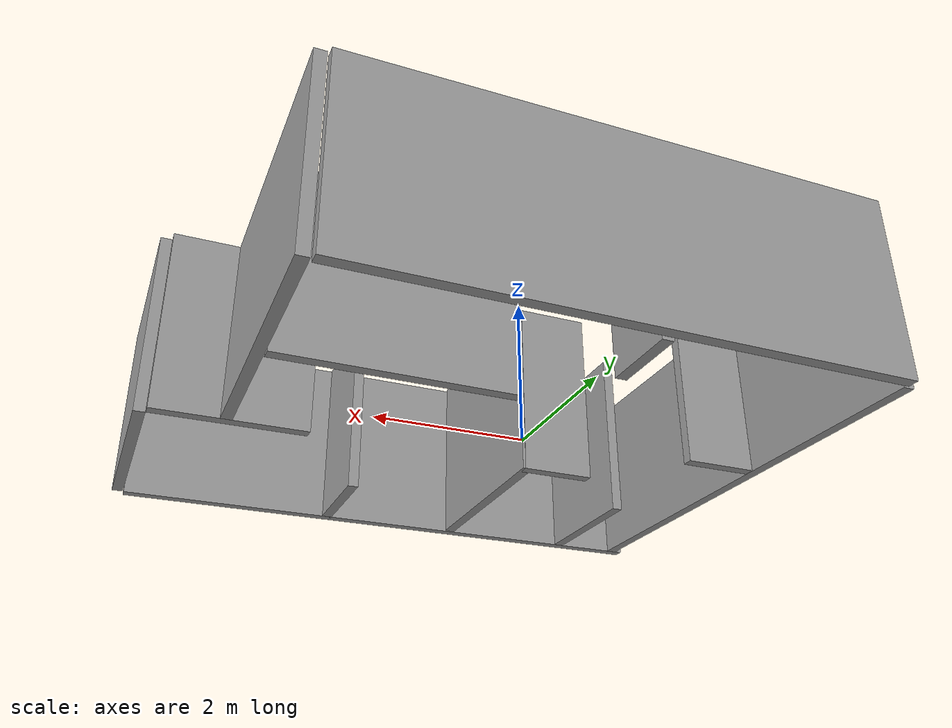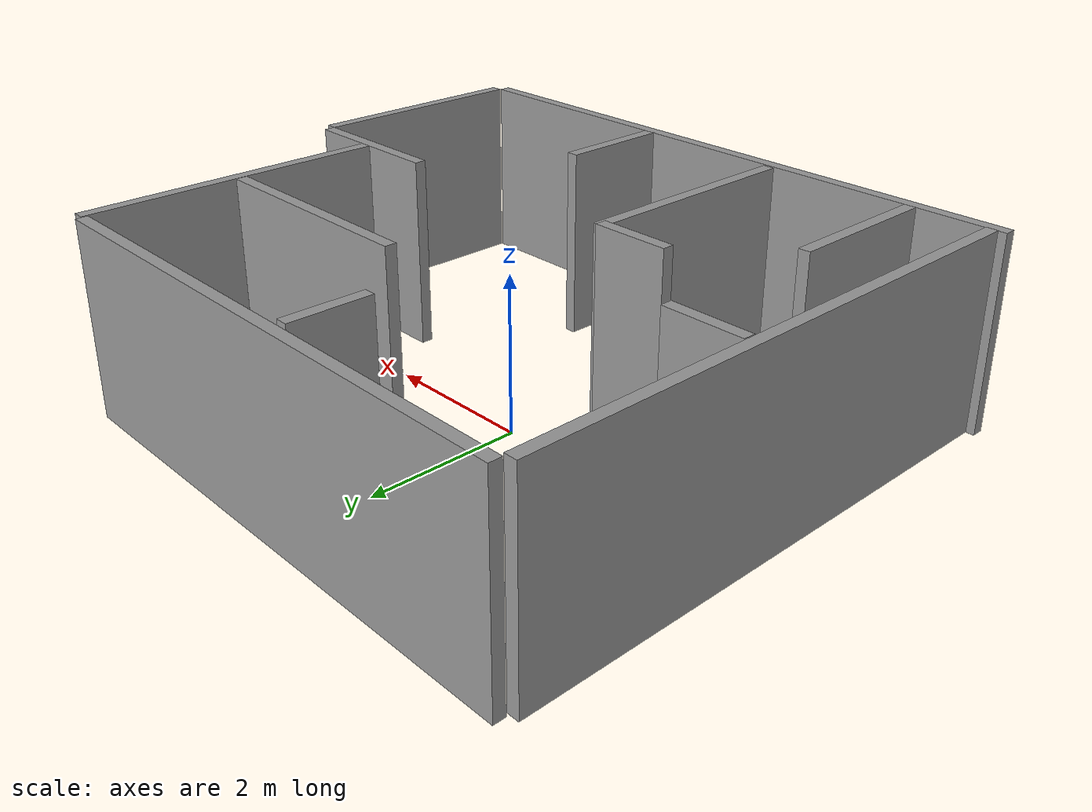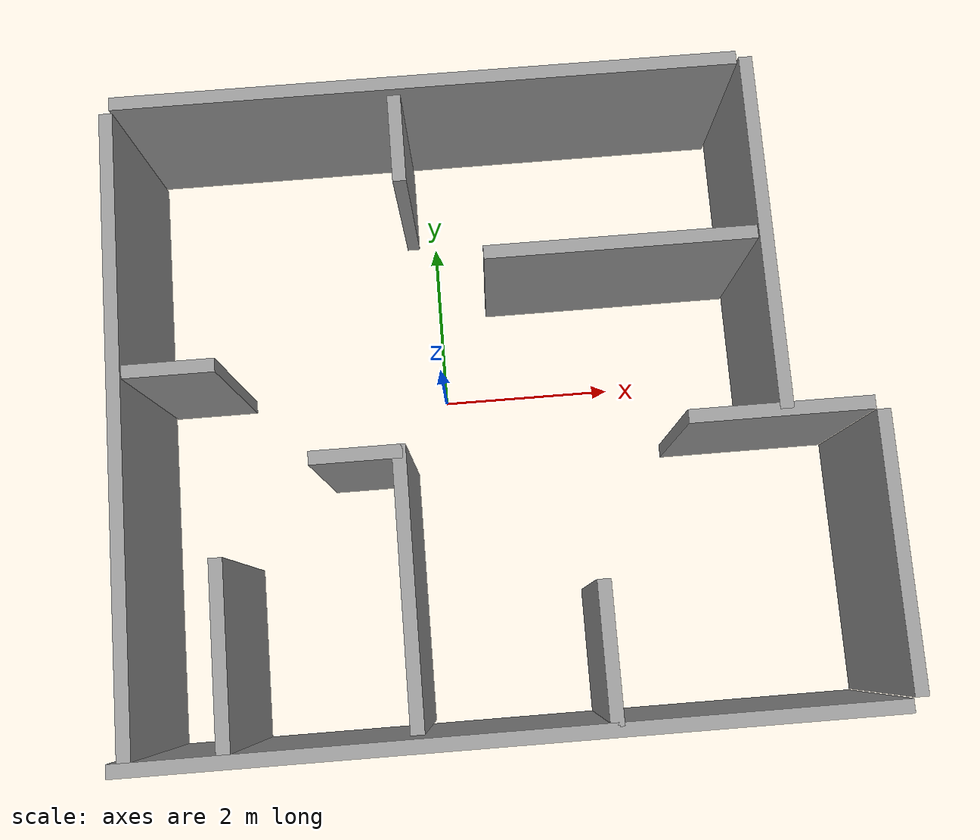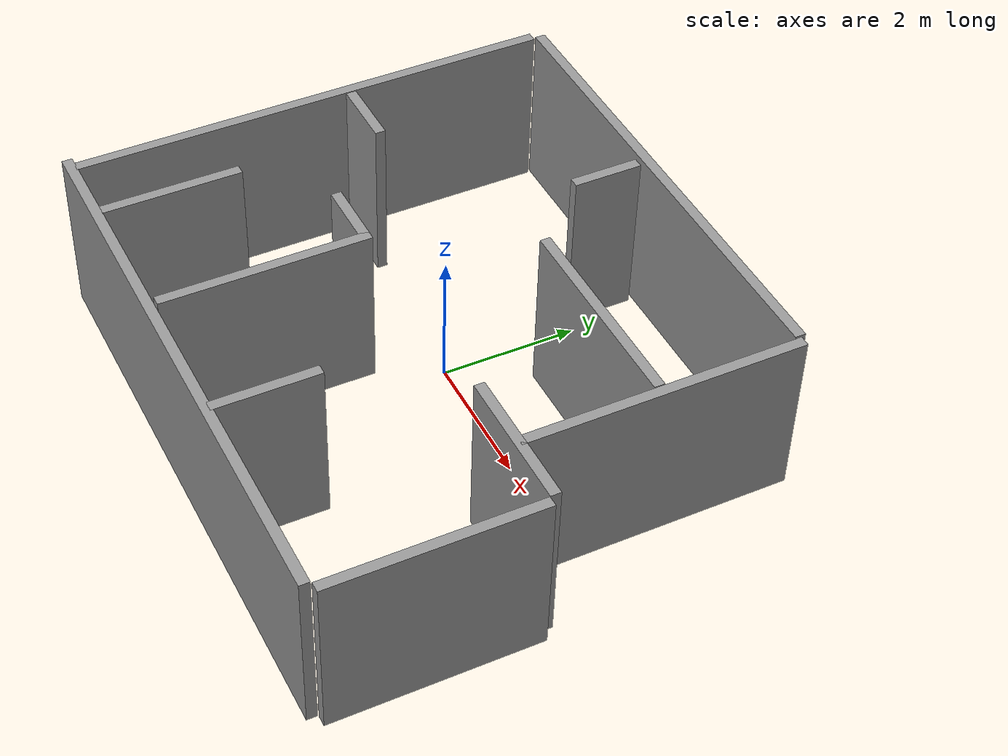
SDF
<?xml version='1.0'?>
<sdf version='1.6'>
  <model name='maze'>
    <link name='Wall_0'>
      <pose frame=''>0.057352 3.19539 0 0 -0 0</pose>
      <self_collide>0</self_collide>
      <enable_wind>0</enable_wind>
      <kinematic>0</kinematic>
      <visual name='Wall_0_Visual'>
        <pose frame=''>0 0 1.25 0 -0 0</pose>
        <geometry>
          <box>
            <size>7 0.15 2.5</size>
          </box>
        </geometry>
        <material>
          <script>
            <uri>file://media/materials/scripts/gazebo.material</uri>
            <name>Gazebo/Grey</name>
          </script>
          <ambient>1 1 1 1</ambient>
        </material>
        <meta>
          <layer>0</layer>
        </meta>
        <transparency>0</transparency>
        <cast_shadows>1</cast_shadows>
      </visual>
      <collision name='Wall_0_Collision'>
        <laser_retro>0</laser_retro>
        <max_contacts>10</max_contacts>
        <pose frame=''>0 0 1.25 0 -0 0</pose>
        <geometry>
          <box>
            <size>7 0.15 2.5</size>
          </box>
        </geometry>
        <surface>
          <friction>
            <ode>
              <mu>1</mu>
              <mu2>1</mu2>
              <fdir1>0 0 0</fdir1>
              <slip1>0</slip1>
              <slip2>0</slip2>
            </ode>
            <torsional>
              <coefficient>1</coefficient>
              <patch_radius>0</patch_radius>
              <surface_radius>0</surface_radius>
              <use_patch_radius>1</use_patch_radius>
              <ode>
                <slip>0</slip>
              </ode>
            </torsional>
          </friction>
          <bounce>
            <restitution_coefficient>0</restitution_coefficient>
            <threshold>1e+06</threshold>
          </bounce>
          <contact>
            <collide_without_contact>0</collide_without_contact>
            <collide_without_contact_bitmask>1</collide_without_contact_bitmask>
            <collide_bitmask>1</collide_bitmask>
            <ode>
              <soft_cfm>0</soft_cfm>
              <soft_erp>0.2</soft_erp>
              <kp>1e+13</kp>
              <kd>1</kd>
              <max_vel>0.01</max_vel>
              <min_depth>0</min_depth>
            </ode>
            <bullet>
              <split_impulse>1</split_impulse>
              <split_impulse_penetration_threshold>-0.01</split_impulse_penetration_threshold>
              <soft_cfm>0</soft_cfm>
              <soft_erp>0.2</soft_erp>
              <kp>1e+13</kp>
              <kd>1</kd>
            </bullet>
          </contact>
        </surface>
      </collision>
    </link>
    <link name='Wall_13'>
      <pose frame=''>2.07007 1.16535 0 0 -0 0</pose>
      <self_collide>0</self_collide>
      <enable_wind>0</enable_wind>
      <kinematic>0</kinematic>
      <visual name='Wall_13_Visual'>
        <pose frame=''>0 0 1.25 0 -0 0</pose>
        <geometry>
          <box>
            <size>3 0.15 2.5</size>
          </box>
        </geometry>
        <material>
          <script>
            <uri>file://media/materials/scripts/gazebo.material</uri>
            <name>Gazebo/Grey</name>
          </script>
          <ambient>1 1 1 1</ambient>
        </material>
        <meta>
          <layer>0</layer>
        </meta>
        <transparency>0</transparency>
        <cast_shadows>1</cast_shadows>
      </visual>
      <collision name='Wall_13_Collision'>
        <laser_retro>0</laser_retro>
        <max_contacts>10</max_contacts>
        <pose frame=''>0 0 1.25 0 -0 0</pose>
        <geometry>
          <box>
            <size>3 0.15 2.5</size>
          </box>
        </geometry>
        <surface>
          <friction>
            <ode>
              <mu>1</mu>
              <mu2>1</mu2>
              <fdir1>0 0 0</fdir1>
              <slip1>0</slip1>
              <slip2>0</slip2>
            </ode>
            <torsional>
              <coefficient>1</coefficient>
              <patch_radius>0</patch_radius>
              <surface_radius>0</surface_radius>
              <use_patch_radius>1</use_patch_radius>
              <ode>
                <slip>0</slip>
              </ode>
            </torsional>
          </friction>
          <bounce>
            <restitution_coefficient>0</restitution_coefficient>
            <threshold>1e+06</threshold>
          </bounce>
          <contact>
            <collide_without_contact>0</collide_without_contact>
            <collide_without_contact_bitmask>1</collide_without_contact_bitmask>
            <collide_bitmask>1</collide_bitmask>
            <ode>
              <soft_cfm>0</soft_cfm>
              <soft_erp>0.2</soft_erp>
              <kp>1e+13</kp>
              <kd>1</kd>
              <max_vel>0.01</max_vel>
              <min_depth>0</min_depth>
            </ode>
            <bullet>
              <split_impulse>1</split_impulse>
              <split_impulse_penetration_threshold>-0.01</split_impulse_penetration_threshold>
              <soft_cfm>0</soft_cfm>
              <soft_erp>0.2</soft_erp>
              <kp>1e+13</kp>
              <kd>1</kd>
            </bullet>
          </contact>
        </surface>
      </collision>
    </link>
    <link name='Wall_20'>
      <pose frame=''>-0.952685 -0.936388 0 0 -0 0</pose>
      <self_collide>0</self_collide>
      <enable_wind>0</enable_wind>
      <kinematic>0</kinematic>
      <visual name='Wall_20_Visual'>
        <pose frame=''>0 0 1.25 0 -0 0</pose>
        <geometry>
          <box>
            <size>1 0.15 2.5</size>
          </box>
        </geometry>
        <material>
          <script>
            <uri>file://media/materials/scripts/gazebo.material</uri>
            <name>Gazebo/Grey</name>
          </script>
          <ambient>1 1 1 1</ambient>
        </material>
        <meta>
          <layer>0</layer>
        </meta>
        <transparency>0</transparency>
        <cast_shadows>1</cast_shadows>
      </visual>
      <collision name='Wall_20_Collision'>
        <laser_retro>0</laser_retro>
        <max_contacts>10</max_contacts>
        <pose frame=''>0 0 1.25 0 -0 0</pose>
        <geometry>
          <box>
            <size>1 0.15 2.5</size>
          </box>
        </geometry>
        <surface>
          <friction>
            <ode>
              <mu>1</mu>
              <mu2>1</mu2>
              <fdir1>0 0 0</fdir1>
              <slip1>0</slip1>
              <slip2>0</slip2>
            </ode>
            <torsional>
              <coefficient>1</coefficient>
              <patch_radius>0</patch_radius>
              <surface_radius>0</surface_radius>
              <use_patch_radius>1</use_patch_radius>
              <ode>
                <slip>0</slip>
              </ode>
            </torsional>
          </friction>
          <bounce>
            <restitution_coefficient>0</restitution_coefficient>
            <threshold>1e+06</threshold>
          </bounce>
          <contact>
            <collide_without_contact>0</collide_without_contact>
            <collide_without_contact_bitmask>1</collide_without_contact_bitmask>
            <collide_bitmask>1</collide_bitmask>
            <ode>
              <soft_cfm>0</soft_cfm>
              <soft_erp>0.2</soft_erp>
              <kp>1e+13</kp>
              <kd>1</kd>
              <max_vel>0.01</max_vel>
              <min_depth>0</min_depth>
            </ode>
            <bullet>
              <split_impulse>1</split_impulse>
              <split_impulse_penetration_threshold>-0.01</split_impulse_penetration_threshold>
              <soft_cfm>0</soft_cfm>
              <soft_erp>0.2</soft_erp>
              <kp>1e+13</kp>
              <kd>1</kd>
            </bullet>
          </contact>
        </surface>
      </collision>
    </link>
    <link name='Wall_25'>
      <pose frame=''>-0.490918 -2.36525 0 0 0 -1.5708</pose>
      <self_collide>0</self_collide>
      <enable_wind>0</enable_wind>
      <kinematic>0</kinematic>
      <visual name='Wall_25_Visual'>
        <pose frame=''>0 0 1.25 0 -0 0</pose>
        <geometry>
          <box>
            <size>3 0.15 2.5</size>
          </box>
        </geometry>
        <material>
          <script>
            <uri>file://media/materials/scripts/gazebo.material</uri>
            <name>Gazebo/Grey</name>
          </script>
          <ambient>1 1 1 1</ambient>
        </material>
        <meta>
          <layer>0</layer>
        </meta>
        <transparency>0</transparency>
        <cast_shadows>1</cast_shadows>
      </visual>
      <collision name='Wall_25_Collision'>
        <laser_retro>0</laser_retro>
        <max_contacts>10</max_contacts>
        <pose frame=''>0 0 1.25 0 -0 0</pose>
        <geometry>
          <box>
            <size>3 0.15 2.5</size>
          </box>
        </geometry>
        <surface>
          <friction>
            <ode>
              <mu>1</mu>
              <mu2>1</mu2>
              <fdir1>0 0 0</fdir1>
              <slip1>0</slip1>
              <slip2>0</slip2>
            </ode>
            <torsional>
              <coefficient>1</coefficient>
              <patch_radius>0</patch_radius>
              <surface_radius>0</surface_radius>
              <use_patch_radius>1</use_patch_radius>
              <ode>
                <slip>0</slip>
              </ode>
            </torsional>
          </friction>
          <bounce>
            <restitution_coefficient>0</restitution_coefficient>
            <threshold>1e+06</threshold>
          </bounce>
          <contact>
            <collide_without_contact>0</collide_without_contact>
            <collide_without_contact_bitmask>1</collide_without_contact_bitmask>
            <collide_bitmask>1</collide_bitmask>
            <ode>
              <soft_cfm>0</soft_cfm>
              <soft_erp>0.2</soft_erp>
              <kp>1e+13</kp>
              <kd>1</kd>
              <max_vel>0.01</max_vel>
              <min_depth>0</min_depth>
            </ode>
            <bullet>
              <split_impulse>1</split_impulse>
              <split_impulse_penetration_threshold>-0.01</split_impulse_penetration_threshold>
              <soft_cfm>0</soft_cfm>
              <soft_erp>0.2</soft_erp>
              <kp>1e+13</kp>
              <kd>1</kd>
            </bullet>
          </contact>
        </surface>
      </collision>
    </link>
    <link name='Wall_28'>
      <pose frame=''>3.60056 -0.811651 0 0 -0 3.14159</pose>
      <self_collide>0</self_collide>
      <enable_wind>0</enable_wind>
      <kinematic>0</kinematic>
      <visual name='Wall_28_Visual'>
        <pose frame=''>0 0 1.25 0 -0 0</pose>
        <geometry>
          <box>
            <size>2 0.15 2.5</size>
          </box>
        </geometry>
        <material>
          <script>
            <uri>file://media/materials/scripts/gazebo.material</uri>
            <name>Gazebo/Grey</name>
          </script>
          <ambient>1 1 1 1</ambient>
        </material>
        <meta>
          <layer>0</layer>
        </meta>
        <transparency>0</transparency>
        <cast_shadows>1</cast_shadows>
      </visual>
      <collision name='Wall_28_Collision'>
        <laser_retro>0</laser_retro>
        <max_contacts>10</max_contacts>
        <pose frame=''>0 0 1.25 0 -0 0</pose>
        <geometry>
          <box>
            <size>2 0.15 2.5</size>
          </box>
        </geometry>
        <surface>
          <friction>
            <ode>
              <mu>1</mu>
              <mu2>1</mu2>
              <fdir1>0 0 0</fdir1>
              <slip1>0</slip1>
              <slip2>0</slip2>
            </ode>
            <torsional>
              <coefficient>1</coefficient>
              <patch_radius>0</patch_radius>
              <surface_radius>0</surface_radius>
              <use_patch_radius>1</use_patch_radius>
              <ode>
                <slip>0</slip>
              </ode>
            </torsional>
          </friction>
          <bounce>
            <restitution_coefficient>0</restitution_coefficient>
            <threshold>1e+06</threshold>
          </bounce>
          <contact>
            <collide_without_contact>0</collide_without_contact>
            <collide_without_contact_bitmask>1</collide_without_contact_bitmask>
            <collide_bitmask>1</collide_bitmask>
            <ode>
              <soft_cfm>0</soft_cfm>
              <soft_erp>0.2</soft_erp>
              <kp>1e+13</kp>
              <kd>1</kd>
              <max_vel>0.01</max_vel>
              <min_depth>0</min_depth>
            </ode>
            <bullet>
              <split_impulse>1</split_impulse>
              <split_impulse_penetration_threshold>-0.01</split_impulse_penetration_threshold>
              <soft_cfm>0</soft_cfm>
              <soft_erp>0.2</soft_erp>
              <kp>1e+13</kp>
              <kd>1</kd>
            </bullet>
          </contact>
        </surface>
      </collision>
    </link>
    <link name='Wall_30'>
      <pose frame=''>-0.286373 2.5499 0 0 -0 1.5708</pose>
      <self_collide>0</self_collide>
      <enable_wind>0</enable_wind>
      <kinematic>0</kinematic>
      <visual name='Wall_30_Visual'>
        <pose frame=''>0 0 1.25 0 -0 0</pose>
        <geometry>
          <box>
            <size>1 0.15 2.5</size>
          </box>
        </geometry>
        <material>
          <script>
            <uri>file://media/materials/scripts/gazebo.material</uri>
            <name>Gazebo/Grey</name>
          </script>
          <ambient>1 1 1 1</ambient>
        </material>
        <meta>
          <layer>0</layer>
        </meta>
        <transparency>0</transparency>
        <cast_shadows>1</cast_shadows>
      </visual>
      <collision name='Wall_30_Collision'>
        <laser_retro>0</laser_retro>
        <max_contacts>10</max_contacts>
        <pose frame=''>0 0 1.25 0 -0 0</pose>
        <geometry>
          <box>
            <size>1 0.15 2.5</size>
          </box>
        </geometry>
        <surface>
          <friction>
            <ode>
              <mu>1</mu>
              <mu2>1</mu2>
              <fdir1>0 0 0</fdir1>
              <slip1>0</slip1>
              <slip2>0</slip2>
            </ode>
            <torsional>
              <coefficient>1</coefficient>
              <patch_radius>0</patch_radius>
              <surface_radius>0</surface_radius>
              <use_patch_radius>1</use_patch_radius>
              <ode>
                <slip>0</slip>
              </ode>
            </torsional>
          </friction>
          <bounce>
            <restitution_coefficient>0</restitution_coefficient>
            <threshold>1e+06</threshold>
          </bounce>
          <contact>
            <collide_without_contact>0</collide_without_contact>
            <collide_without_contact_bitmask>1</collide_without_contact_bitmask>
            <collide_bitmask>1</collide_bitmask>
            <ode>
              <soft_cfm>0</soft_cfm>
              <soft_erp>0.2</soft_erp>
              <kp>1e+13</kp>
              <kd>1</kd>
              <max_vel>0.01</max_vel>
              <min_depth>0</min_depth>
            </ode>
            <bullet>
              <split_impulse>1</split_impulse>
              <split_impulse_penetration_threshold>-0.01</split_impulse_penetration_threshold>
              <soft_cfm>0</soft_cfm>
              <soft_erp>0.2</soft_erp>
              <kp>1e+13</kp>
              <kd>1</kd>
            </bullet>
          </contact>
        </surface>
      </collision>
    </link>
    <link name='Wall_32'>
      <pose frame=''>-2.47315 -2.90491 0 0 0 -1.5708</pose>
      <self_collide>0</self_collide>
      <enable_wind>0</enable_wind>
      <kinematic>0</kinematic>
      <visual name='Wall_32_Visual'>
        <pose frame=''>0 0 1.25 0 -0 0</pose>
        <geometry>
          <box>
            <size>2 0.15 2.5</size>
          </box>
        </geometry>
        <material>
          <script>
            <uri>file://media/materials/scripts/gazebo.material</uri>
            <name>Gazebo/Grey</name>
          </script>
          <ambient>1 1 1 1</ambient>
        </material>
        <meta>
          <layer>0</layer>
        </meta>
        <transparency>0</transparency>
        <cast_shadows>1</cast_shadows>
      </visual>
      <collision name='Wall_32_Collision'>
        <laser_retro>0</laser_retro>
        <max_contacts>10</max_contacts>
        <pose frame=''>0 0 1.25 0 -0 0</pose>
        <geometry>
          <box>
            <size>2 0.15 2.5</size>
          </box>
        </geometry>
        <surface>
          <friction>
            <ode>
              <mu>1</mu>
              <mu2>1</mu2>
              <fdir1>0 0 0</fdir1>
              <slip1>0</slip1>
              <slip2>0</slip2>
            </ode>
            <torsional>
              <coefficient>1</coefficient>
              <patch_radius>0</patch_radius>
              <surface_radius>0</surface_radius>
              <use_patch_radius>1</use_patch_radius>
              <ode>
                <slip>0</slip>
              </ode>
            </torsional>
          </friction>
          <bounce>
            <restitution_coefficient>0</restitution_coefficient>
            <threshold>1e+06</threshold>
          </bounce>
          <contact>
            <collide_without_contact>0</collide_without_contact>
            <collide_without_contact_bitmask>1</collide_without_contact_bitmask>
            <collide_bitmask>1</collide_bitmask>
            <ode>
              <soft_cfm>0</soft_cfm>
              <soft_erp>0.2</soft_erp>
              <kp>1e+13</kp>
              <kd>1</kd>
              <max_vel>0.01</max_vel>
              <min_depth>0</min_depth>
            </ode>
            <bullet>
              <split_impulse>1</split_impulse>
              <split_impulse_penetration_threshold>-0.01</split_impulse_penetration_threshold>
              <soft_cfm>0</soft_cfm>
              <soft_erp>0.2</soft_erp>
              <kp>1e+13</kp>
              <kd>1</kd>
            </bullet>
          </contact>
        </surface>
      </collision>
    </link>
    <link name='Wall_34'>
      <pose frame=''>-2.89297 0.148883 0 0 -0 0</pose>
      <self_collide>0</self_collide>
      <enable_wind>0</enable_wind>
      <kinematic>0</kinematic>
      <visual name='Wall_34_Visual'>
        <pose frame=''>0 0 1.25 0 -0 0</pose>
        <geometry>
          <box>
            <size>1 0.15 2.5</size>
          </box>
        </geometry>
        <material>
          <script>
            <uri>file://media/materials/scripts/gazebo.material</uri>
            <name>Gazebo/Grey</name>
          </script>
          <ambient>1 1 1 1</ambient>
        </material>
        <meta>
          <layer>0</layer>
        </meta>
        <transparency>0</transparency>
        <cast_shadows>1</cast_shadows>
      </visual>
      <collision name='Wall_34_Collision'>
        <laser_retro>0</laser_retro>
        <max_contacts>10</max_contacts>
        <pose frame=''>0 0 1.25 0 -0 0</pose>
        <geometry>
          <box>
            <size>1 0.15 2.5</size>
          </box>
        </geometry>
        <surface>
          <friction>
            <ode>
              <mu>1</mu>
              <mu2>1</mu2>
              <fdir1>0 0 0</fdir1>
              <slip1>0</slip1>
              <slip2>0</slip2>
            </ode>
            <torsional>
              <coefficient>1</coefficient>
              <patch_radius>0</patch_radius>
              <surface_radius>0</surface_radius>
              <use_patch_radius>1</use_patch_radius>
              <ode>
                <slip>0</slip>
              </ode>
            </torsional>
          </friction>
          <bounce>
            <restitution_coefficient>0</restitution_coefficient>
            <threshold>1e+06</threshold>
          </bounce>
          <contact>
            <collide_without_contact>0</collide_without_contact>
            <collide_without_contact_bitmask>1</collide_without_contact_bitmask>
            <collide_bitmask>1</collide_bitmask>
            <ode>
              <soft_cfm>0</soft_cfm>
              <soft_erp>0.2</soft_erp>
              <kp>1e+13</kp>
              <kd>1</kd>
              <max_vel>0.01</max_vel>
              <min_depth>0</min_depth>
            </ode>
            <bullet>
              <split_impulse>1</split_impulse>
              <split_impulse_penetration_threshold>-0.01</split_impulse_penetration_threshold>
              <soft_cfm>0</soft_cfm>
              <soft_erp>0.2</soft_erp>
              <kp>1e+13</kp>
              <kd>1</kd>
            </bullet>
          </contact>
        </surface>
      </collision>
    </link>
    <link name='Wall_42'>
      <pose frame=''>0.461285 -3.97608 0 0 -0 3.14159</pose>
      <self_collide>0</self_collide>
      <enable_wind>0</enable_wind>
      <kinematic>0</kinematic>
      <visual name='Wall_42_Visual'>
        <pose frame=''>0 0 1.25 0 -0 0</pose>
        <geometry>
          <box>
            <size>8.25 0.15 2.5</size>
          </box>
        </geometry>
        <material>
          <script>
            <uri>file://media/materials/scripts/gazebo.material</uri>
            <name>Gazebo/Grey</name>
          </script>
          <ambient>1 1 1 1</ambient>
        </material>
        <meta>
          <layer>0</layer>
        </meta>
        <transparency>0</transparency>
        <cast_shadows>1</cast_shadows>
      </visual>
      <collision name='Wall_42_Collision'>
        <laser_retro>0</laser_retro>
        <max_contacts>10</max_contacts>
        <pose frame=''>0 0 1.25 0 -0 0</pose>
        <geometry>
          <box>
            <size>8.25 0.15 2.5</size>
          </box>
        </geometry>
        <surface>
          <friction>
            <ode>
              <mu>1</mu>
              <mu2>1</mu2>
              <fdir1>0 0 0</fdir1>
              <slip1>0</slip1>
              <slip2>0</slip2>
            </ode>
            <torsional>
              <coefficient>1</coefficient>
              <patch_radius>0</patch_radius>
              <surface_radius>0</surface_radius>
              <use_patch_radius>1</use_patch_radius>
              <ode>
                <slip>0</slip>
              </ode>
            </torsional>
          </friction>
          <bounce>
            <restitution_coefficient>0</restitution_coefficient>
            <threshold>1e+06</threshold>
          </bounce>
          <contact>
            <collide_without_contact>0</collide_without_contact>
            <collide_without_contact_bitmask>1</collide_without_contact_bitmask>
            <collide_bitmask>1</collide_bitmask>
            <ode>
              <soft_cfm>0</soft_cfm>
              <soft_erp>0.2</soft_erp>
              <kp>1e+13</kp>
              <kd>1</kd>
              <max_vel>0.01</max_vel>
              <min_depth>0</min_depth>
            </ode>
            <bullet>
              <split_impulse>1</split_impulse>
              <split_impulse_penetration_threshold>-0.01</split_impulse_penetration_threshold>
              <soft_cfm>0</soft_cfm>
              <soft_erp>0.2</soft_erp>
              <kp>1e+13</kp>
              <kd>1</kd>
            </bullet>
          </contact>
        </surface>
      </collision>
    </link>
    <link name='Wall_49'>
      <pose frame=''>3.65826 1.1927 0 0 0 -1.5708</pose>
      <self_collide>0</self_collide>
      <enable_wind>0</enable_wind>
      <kinematic>0</kinematic>
      <visual name='Wall_49_Visual'>
        <pose frame=''>0 0 1.25 0 -0 0</pose>
        <geometry>
          <box>
            <size>4 0.15 2.5</size>
          </box>
        </geometry>
        <material>
          <script>
            <uri>file://media/materials/scripts/gazebo.material</uri>
            <name>Gazebo/Grey</name>
          </script>
          <ambient>1 1 1 1</ambient>
        </material>
        <meta>
          <layer>0</layer>
        </meta>
        <transparency>0</transparency>
        <cast_shadows>1</cast_shadows>
      </visual>
      <collision name='Wall_49_Collision'>
        <laser_retro>0</laser_retro>
        <max_contacts>10</max_contacts>
        <pose frame=''>0 0 1.25 0 -0 0</pose>
        <geometry>
          <box>
            <size>4 0.15 2.5</size>
          </box>
        </geometry>
        <surface>
          <friction>
            <ode>
              <mu>1</mu>
              <mu2>1</mu2>
              <fdir1>0 0 0</fdir1>
              <slip1>0</slip1>
              <slip2>0</slip2>
            </ode>
            <torsional>
              <coefficient>1</coefficient>
              <patch_radius>0</patch_radius>
              <surface_radius>0</surface_radius>
              <use_patch_radius>1</use_patch_radius>
              <ode>
                <slip>0</slip>
              </ode>
            </torsional>
          </friction>
          <bounce>
            <restitution_coefficient>0</restitution_coefficient>
            <threshold>1e+06</threshold>
          </bounce>
          <contact>
            <collide_without_contact>0</collide_without_contact>
            <collide_without_contact_bitmask>1</collide_without_contact_bitmask>
            <collide_bitmask>1</collide_bitmask>
            <ode>
              <soft_cfm>0</soft_cfm>
              <soft_erp>0.2</soft_erp>
              <kp>1e+13</kp>
              <kd>1</kd>
              <max_vel>0.01</max_vel>
              <min_depth>0</min_depth>
            </ode>
            <bullet>
              <split_impulse>1</split_impulse>
              <split_impulse_penetration_threshold>-0.01</split_impulse_penetration_threshold>
              <soft_cfm>0</soft_cfm>
              <soft_erp>0.2</soft_erp>
              <kp>1e+13</kp>
              <kd>1</kd>
            </bullet>
          </contact>
        </surface>
      </collision>
    </link>
    <link name='Wall_52'>
      <pose frame=''>4.67666 -2.39267 0 0 0 -1.5708</pose>
      <self_collide>0</self_collide>
      <enable_wind>0</enable_wind>
      <kinematic>0</kinematic>
      <visual name='Wall_52_Visual'>
        <pose frame=''>0 0 1.25 0 -0 0</pose>
        <geometry>
          <box>
            <size>3 0.15 2.5</size>
          </box>
        </geometry>
        <material>
          <script>
            <uri>file://media/materials/scripts/gazebo.material</uri>
            <name>Gazebo/Grey</name>
          </script>
          <ambient>1 1 1 1</ambient>
        </material>
        <meta>
          <layer>0</layer>
        </meta>
        <transparency>0</transparency>
        <cast_shadows>1</cast_shadows>
      </visual>
      <collision name='Wall_52_Collision'>
        <laser_retro>0</laser_retro>
        <max_contacts>10</max_contacts>
        <pose frame=''>0 0 1.25 0 -0 0</pose>
        <geometry>
          <box>
            <size>3 0.15 2.5</size>
          </box>
        </geometry>
        <surface>
          <friction>
            <ode>
              <mu>1</mu>
              <mu2>1</mu2>
              <fdir1>0 0 0</fdir1>
              <slip1>0</slip1>
              <slip2>0</slip2>
            </ode>
            <torsional>
              <coefficient>1</coefficient>
              <patch_radius>0</patch_radius>
              <surface_radius>0</surface_radius>
              <use_patch_radius>1</use_patch_radius>
              <ode>
                <slip>0</slip>
              </ode>
            </torsional>
          </friction>
          <bounce>
            <restitution_coefficient>0</restitution_coefficient>
            <threshold>1e+06</threshold>
          </bounce>
          <contact>
            <collide_without_contact>0</collide_without_contact>
            <collide_without_contact_bitmask>1</collide_without_contact_bitmask>
            <collide_bitmask>1</collide_bitmask>
            <ode>
              <soft_cfm>0</soft_cfm>
              <soft_erp>0.2</soft_erp>
              <kp>1e+13</kp>
              <kd>1</kd>
              <max_vel>0.01</max_vel>
              <min_depth>0</min_depth>
            </ode>
            <bullet>
              <split_impulse>1</split_impulse>
              <split_impulse_penetration_threshold>-0.01</split_impulse_penetration_threshold>
              <soft_cfm>0</soft_cfm>
              <soft_erp>0.2</soft_erp>
              <kp>1e+13</kp>
              <kd>1</kd>
            </bullet>
          </contact>
        </surface>
      </collision>
    </link>
    <link name='Wall_54'>
      <pose frame=''>1.54527 -3.19274 0 0 -0 1.5708</pose>
      <self_collide>0</self_collide>
      <enable_wind>0</enable_wind>
      <kinematic>0</kinematic>
      <visual name='Wall_54_Visual'>
        <pose frame=''>0 0 1.25 0 -0 0</pose>
        <geometry>
          <box>
            <size>1.5 0.15 2.5</size>
          </box>
        </geometry>
        <material>
          <script>
            <uri>file://media/materials/scripts/gazebo.material</uri>
            <name>Gazebo/Grey</name>
          </script>
          <ambient>1 1 1 1</ambient>
        </material>
        <meta>
          <layer>0</layer>
        </meta>
        <transparency>0</transparency>
        <cast_shadows>1</cast_shadows>
      </visual>
      <collision name='Wall_54_Collision'>
        <laser_retro>0</laser_retro>
        <max_contacts>10</max_contacts>
        <pose frame=''>0 0 1.25 0 -0 0</pose>
        <geometry>
          <box>
            <size>1.5 0.15 2.5</size>
          </box>
        </geometry>
        <surface>
          <friction>
            <ode>
              <mu>1</mu>
              <mu2>1</mu2>
              <fdir1>0 0 0</fdir1>
              <slip1>0</slip1>
              <slip2>0</slip2>
            </ode>
            <torsional>
              <coefficient>1</coefficient>
              <patch_radius>0</patch_radius>
              <surface_radius>0</surface_radius>
              <use_patch_radius>1</use_patch_radius>
              <ode>
                <slip>0</slip>
              </ode>
            </torsional>
          </friction>
          <bounce>
            <restitution_coefficient>0</restitution_coefficient>
            <threshold>1e+06</threshold>
          </bounce>
          <contact>
            <collide_without_contact>0</collide_without_contact>
            <collide_without_contact_bitmask>1</collide_without_contact_bitmask>
            <collide_bitmask>1</collide_bitmask>
            <ode>
              <soft_cfm>0</soft_cfm>
              <soft_erp>0.2</soft_erp>
              <kp>1e+13</kp>
              <kd>1</kd>
              <max_vel>0.01</max_vel>
              <min_depth>0</min_depth>
            </ode>
            <bullet>
              <split_impulse>1</split_impulse>
              <split_impulse_penetration_threshold>-0.01</split_impulse_penetration_threshold>
              <soft_cfm>0</soft_cfm>
              <soft_erp>0.2</soft_erp>
              <kp>1e+13</kp>
              <kd>1</kd>
            </bullet>
          </contact>
        </surface>
      </collision>
    </link>
    <link name='Wall_9'>
      <pose frame=''>-3.48263 -0.416195 0 0 0 -1.5708</pose>
      <self_collide>0</self_collide>
      <enable_wind>0</enable_wind>
      <kinematic>0</kinematic>
      <visual name='Wall_9_Visual'>
        <pose frame=''>0 0 1.25 0 -0 0</pose>
        <geometry>
          <box>
            <size>7 0.15 2.5</size>
          </box>
        </geometry>
        <material>
          <script>
            <uri>file://media/materials/scripts/gazebo.material</uri>
            <name>Gazebo/Grey</name>
          </script>
          <ambient>1 1 1 1</ambient>
        </material>
        <meta>
          <layer>0</layer>
        </meta>
        <transparency>0</transparency>
        <cast_shadows>1</cast_shadows>
      </visual>
      <collision name='Wall_9_Collision'>
        <laser_retro>0</laser_retro>
        <max_contacts>10</max_contacts>
        <pose frame=''>0 0 1.25 0 -0 0</pose>
        <geometry>
          <box>
            <size>7 0.15 2.5</size>
          </box>
        </geometry>
        <surface>
          <friction>
            <ode>
              <mu>1</mu>
              <mu2>1</mu2>
              <fdir1>0 0 0</fdir1>
              <slip1>0</slip1>
              <slip2>0</slip2>
            </ode>
            <torsional>
              <coefficient>1</coefficient>
              <patch_radius>0</patch_radius>
              <surface_radius>0</surface_radius>
              <use_patch_radius>1</use_patch_radius>
              <ode>
                <slip>0</slip>
              </ode>
            </torsional>
          </friction>
          <bounce>
            <restitution_coefficient>0</restitution_coefficient>
            <threshold>1e+06</threshold>
          </bounce>
          <contact>
            <collide_without_contact>0</collide_without_contact>
            <collide_without_contact_bitmask>1</collide_without_contact_bitmask>
            <collide_bitmask>1</collide_bitmask>
            <ode>
              <soft_cfm>0</soft_cfm>
              <soft_erp>0.2</soft_erp>
              <kp>1e+13</kp>
              <kd>1</kd>
              <max_vel>0.01</max_vel>
              <min_depth>0</min_depth>
            </ode>
            <bullet>
              <split_impulse>1</split_impulse>
              <split_impulse_penetration_threshold>-0.01</split_impulse_penetration_threshold>
              <soft_cfm>0</soft_cfm>
              <soft_erp>0.2</soft_erp>
              <kp>1e+13</kp>
              <kd>1</kd>
            </bullet>
          </contact>
        </surface>
      </collision>
    </link>
    <static>1</static>
    <allow_auto_disable>1</allow_auto_disable>
  </model>
</sdf>
